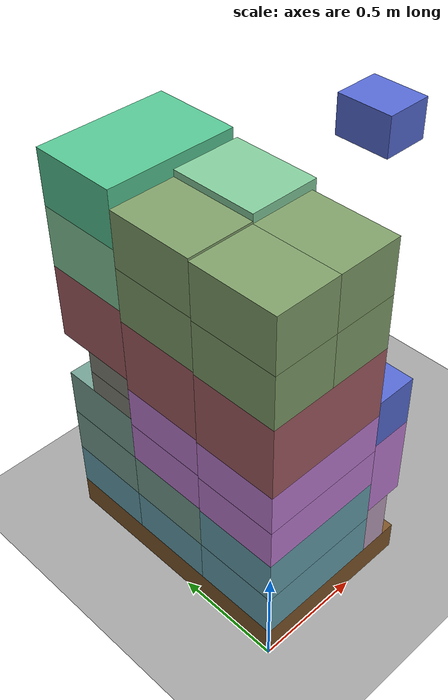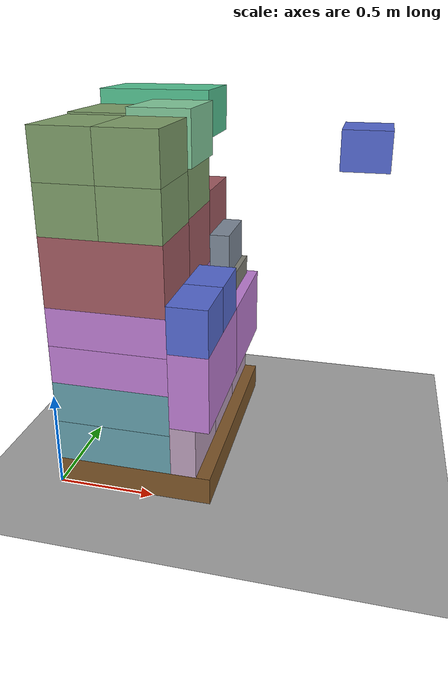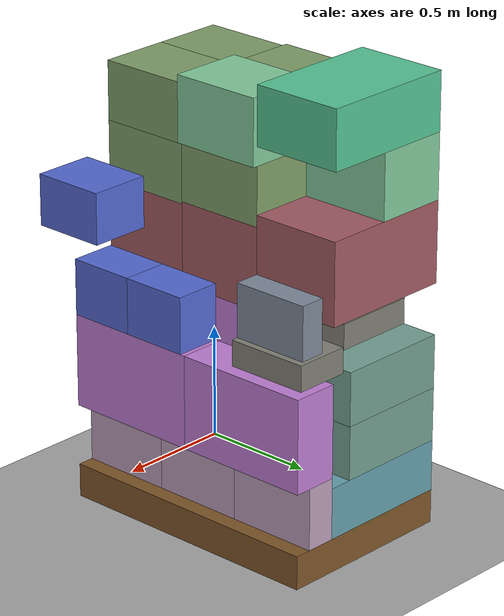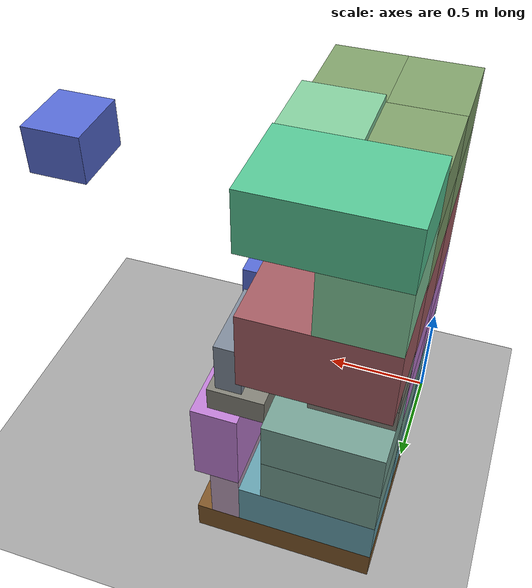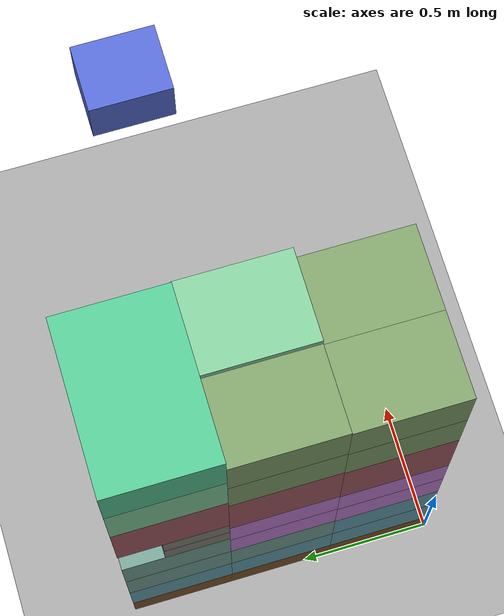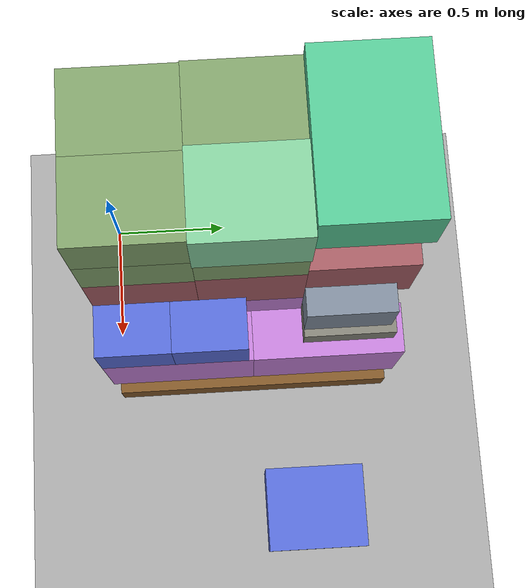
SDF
<sdf version="1.10">
 <world name="pallet_towers">
  <model name="ground_plane">
   <static>true</static>
   <link name="link">
    <collision name="collision">
     <geometry><plane><normal>0 0 1</normal><size>30 30</size></plane></geometry>
     <surface>
      <friction><ode><mu>0.55</mu><mu2>0.55</mu2></ode></friction>
      <bounce><restitution_coefficient>0</restitution_coefficient><threshold>100000</threshold></bounce>
      <contact><ode><kp>1000000</kp><kd>100</kd><max_vel>1</max_vel><min_depth>0.0005</min_depth></ode></contact>
     </surface>
    </collision>
    <visual name="visual">
     <geometry><plane><normal>0 0 1</normal><size>30 30</size></plane></geometry>
     <material><ambient>0.65 0.65 0.65 1</ambient><diffuse>0.65 0.65 0.65 1</diffuse></material>
    </visual>
   </link>
  </model>
  <model name="pallet_01_P01">
   <static>false</static>
   <pose>0.4 0.6 0.072 0 0 0</pose>
   <link name="body">
    <inertial>
     <mass>25</mass>
     <inertia>
      <ixx>3.0432</ixx>
      <ixy>0</ixy>
      <ixz>0</ixz>
      <iyy>1.37653333</iyy>
      <iyz>0</iyz>
      <izz>4.33333333</izz>
     </inertia>
    </inertial>
    <collision name="collision">
     <geometry><box><size>0.8 1.2 0.144</size></box></geometry>
     <surface>
      <friction><ode><mu>0.55</mu><mu2>0.55</mu2></ode></friction>
      <bounce><restitution_coefficient>0</restitution_coefficient><threshold>100000</threshold></bounce>
      <contact><ode><kp>1000000</kp><kd>100</kd><max_vel>1</max_vel><min_depth>0.0005</min_depth></ode></contact>
     </surface>
    </collision>
    <visual name="visual">
     <geometry><box><size>0.8 1.2 0.144</size></box></geometry>
     <material>
      <ambient>0.5 0.34 0.16 1</ambient>
      <diffuse>0.5 0.34 0.16 1</diffuse>
      <specular>0.05 0.05 0.05 1</specular>
     </material>
    </visual>
   </link>
  </model>
  <model name="box_p01_0001_APPLES_001_APPLES">
   <static>false</static>
   <pose>0.3 0.2 0.254 0 0 0</pose>
   <link name="body">
    <inertial>
     <mass>12</mass>
     <inertia><ixx>0.2084</ixx><ixy>0</ixy><ixz>0</ixz><iyy>0.4084</iyy><iyz>0</iyz><izz>0.52</izz></inertia>
    </inertial>
    <collision name="collision">
     <geometry><box><size>0.6 0.4 0.22</size></box></geometry>
     <surface>
      <friction><ode><mu>0.55</mu><mu2>0.55</mu2></ode></friction>
      <bounce><restitution_coefficient>0</restitution_coefficient><threshold>100000</threshold></bounce>
      <contact><ode><kp>1000000</kp><kd>100</kd><max_vel>1</max_vel><min_depth>0.0005</min_depth></ode></contact>
     </surface>
    </collision>
    <visual name="visual">
     <geometry><box><size>0.6 0.4 0.22</size></box></geometry>
     <material>
      <ambient>0.4 0.635294118 0.68627451 1</ambient>
      <diffuse>0.4 0.635294118 0.68627451 1</diffuse>
      <specular>0.05 0.05 0.05 1</specular>
     </material>
    </visual>
   </link>
  </model>
  <model name="box_p01_0002_APPLES_002_APPLES">
   <static>false</static>
   <pose>0.3 0.6 0.254 0 0 0</pose>
   <link name="body">
    <inertial>
     <mass>12</mass>
     <inertia><ixx>0.2084</ixx><ixy>0</ixy><ixz>0</ixz><iyy>0.4084</iyy><iyz>0</iyz><izz>0.52</izz></inertia>
    </inertial>
    <collision name="collision">
     <geometry><box><size>0.6 0.4 0.22</size></box></geometry>
     <surface>
      <friction><ode><mu>0.55</mu><mu2>0.55</mu2></ode></friction>
      <bounce><restitution_coefficient>0</restitution_coefficient><threshold>100000</threshold></bounce>
      <contact><ode><kp>1000000</kp><kd>100</kd><max_vel>1</max_vel><min_depth>0.0005</min_depth></ode></contact>
     </surface>
    </collision>
    <visual name="visual">
     <geometry><box><size>0.6 0.4 0.22</size></box></geometry>
     <material>
      <ambient>0.4 0.635294118 0.68627451 1</ambient>
      <diffuse>0.4 0.635294118 0.68627451 1</diffuse>
      <specular>0.05 0.05 0.05 1</specular>
     </material>
    </visual>
   </link>
  </model>
  <model name="box_p01_0003_APPLES_003_APPLES">
   <static>false</static>
   <pose>0.3 1 0.254 0 0 0</pose>
   <link name="body">
    <inertial>
     <mass>12</mass>
     <inertia><ixx>0.2084</ixx><ixy>0</ixy><ixz>0</ixz><iyy>0.4084</iyy><iyz>0</iyz><izz>0.52</izz></inertia>
    </inertial>
    <collision name="collision">
     <geometry><box><size>0.6 0.4 0.22</size></box></geometry>
     <surface>
      <friction><ode><mu>0.55</mu><mu2>0.55</mu2></ode></friction>
      <bounce><restitution_coefficient>0</restitution_coefficient><threshold>100000</threshold></bounce>
      <contact><ode><kp>1000000</kp><kd>100</kd><max_vel>1</max_vel><min_depth>0.0005</min_depth></ode></contact>
     </surface>
    </collision>
    <visual name="visual">
     <geometry><box><size>0.6 0.4 0.22</size></box></geometry>
     <material>
      <ambient>0.4 0.635294118 0.68627451 1</ambient>
      <diffuse>0.4 0.635294118 0.68627451 1</diffuse>
      <specular>0.05 0.05 0.05 1</specular>
     </material>
    </visual>
   </link>
  </model>
  <model name="box_p01_0004_APPLES_004_APPLES">
   <static>false</static>
   <pose>0.3 0.2 0.474 0 0 0</pose>
   <link name="body">
    <inertial>
     <mass>12</mass>
     <inertia><ixx>0.2084</ixx><ixy>0</ixy><ixz>0</ixz><iyy>0.4084</iyy><iyz>0</iyz><izz>0.52</izz></inertia>
    </inertial>
    <collision name="collision">
     <geometry><box><size>0.6 0.4 0.22</size></box></geometry>
     <surface>
      <friction><ode><mu>0.55</mu><mu2>0.55</mu2></ode></friction>
      <bounce><restitution_coefficient>0</restitution_coefficient><threshold>100000</threshold></bounce>
      <contact><ode><kp>1000000</kp><kd>100</kd><max_vel>1</max_vel><min_depth>0.0005</min_depth></ode></contact>
     </surface>
    </collision>
    <visual name="visual">
     <geometry><box><size>0.6 0.4 0.22</size></box></geometry>
     <material>
      <ambient>0.4 0.635294118 0.68627451 1</ambient>
      <diffuse>0.4 0.635294118 0.68627451 1</diffuse>
      <specular>0.05 0.05 0.05 1</specular>
     </material>
    </visual>
   </link>
  </model>
  <model name="box_p01_0005_BANANA_001_BANANA">
   <static>false</static>
   <pose>0.25 0.6 0.479 0 0 0</pose>
   <link name="body">
    <inertial>
     <mass>18</mass>
     <inertia><ixx>0.31935</ixx><ixy>0</ixy><ixz>0</ixz><iyy>0.45435</iyy><iyz>0</iyz><izz>0.615</izz></inertia>
    </inertial>
    <collision name="collision">
     <geometry><box><size>0.5 0.4 0.23</size></box></geometry>
     <surface>
      <friction><ode><mu>0.55</mu><mu2>0.55</mu2></ode></friction>
      <bounce><restitution_coefficient>0</restitution_coefficient><threshold>100000</threshold></bounce>
      <contact><ode><kp>1000000</kp><kd>100</kd><max_vel>1</max_vel><min_depth>0.0005</min_depth></ode></contact>
     </surface>
    </collision>
    <visual name="visual">
     <geometry><box><size>0.5 0.4 0.23</size></box></geometry>
     <material>
      <ambient>0.462745098 0.635294118 0.584313725 1</ambient>
      <diffuse>0.462745098 0.635294118 0.584313725 1</diffuse>
      <specular>0.05 0.05 0.05 1</specular>
     </material>
    </visual>
   </link>
  </model>
  <model name="box_p01_0006_BANANA_002_BANANA">
   <static>false</static>
   <pose>0.25 1 0.479 0 0 0</pose>
   <link name="body">
    <inertial>
     <mass>18</mass>
     <inertia><ixx>0.31935</ixx><ixy>0</ixy><ixz>0</ixz><iyy>0.45435</iyy><iyz>0</iyz><izz>0.615</izz></inertia>
    </inertial>
    <collision name="collision">
     <geometry><box><size>0.5 0.4 0.23</size></box></geometry>
     <surface>
      <friction><ode><mu>0.55</mu><mu2>0.55</mu2></ode></friction>
      <bounce><restitution_coefficient>0</restitution_coefficient><threshold>100000</threshold></bounce>
      <contact><ode><kp>1000000</kp><kd>100</kd><max_vel>1</max_vel><min_depth>0.0005</min_depth></ode></contact>
     </surface>
    </collision>
    <visual name="visual">
     <geometry><box><size>0.5 0.4 0.23</size></box></geometry>
     <material>
      <ambient>0.462745098 0.635294118 0.584313725 1</ambient>
      <diffuse>0.462745098 0.635294118 0.584313725 1</diffuse>
      <specular>0.05 0.05 0.05 1</specular>
     </material>
    </visual>
   </link>
  </model>
  <model name="box_p01_0007_BANANA_003_BANANA">
   <static>false</static>
   <pose>0.25 1 0.709 0 0 0</pose>
   <link name="body">
    <inertial>
     <mass>18</mass>
     <inertia><ixx>0.31935</ixx><ixy>0</ixy><ixz>0</ixz><iyy>0.45435</iyy><iyz>0</iyz><izz>0.615</izz></inertia>
    </inertial>
    <collision name="collision">
     <geometry><box><size>0.5 0.4 0.23</size></box></geometry>
     <surface>
      <friction><ode><mu>0.55</mu><mu2>0.55</mu2></ode></friction>
      <bounce><restitution_coefficient>0</restitution_coefficient><threshold>100000</threshold></bounce>
      <contact><ode><kp>1000000</kp><kd>100</kd><max_vel>1</max_vel><min_depth>0.0005</min_depth></ode></contact>
     </surface>
    </collision>
    <visual name="visual">
     <geometry><box><size>0.5 0.4 0.23</size></box></geometry>
     <material>
      <ambient>0.462745098 0.635294118 0.584313725 1</ambient>
      <diffuse>0.462745098 0.635294118 0.584313725 1</diffuse>
      <specular>0.05 0.05 0.05 1</specular>
     </material>
    </visual>
   </link>
  </model>
  <model name="box_p01_0008_BEER24_001_BEER24">
   <static>false</static>
   <pose>0.665 0.2 0.2765 0 0 0</pose>
   <link name="body">
    <inertial>
     <mass>9</mass>
     <inertia>
      <ixx>0.17266875</ixx>
      <ixy>0</ixy>
      <ixz>0</ixz>
      <iyy>0.06534375</iyy>
      <iyz>0</iyz>
      <izz>0.132675</izz>
     </inertia>
    </inertial>
    <collision name="collision">
     <geometry><box><size>0.13 0.4 0.265</size></box></geometry>
     <surface>
      <friction><ode><mu>0.55</mu><mu2>0.55</mu2></ode></friction>
      <bounce><restitution_coefficient>0</restitution_coefficient><threshold>100000</threshold></bounce>
      <contact><ode><kp>1000000</kp><kd>100</kd><max_vel>1</max_vel><min_depth>0.0005</min_depth></ode></contact>
     </surface>
    </collision>
    <visual name="visual">
     <geometry><box><size>0.13 0.4 0.265</size></box></geometry>
     <material>
      <ambient>0.741176471 0.62745098 0.737254902 1</ambient>
      <diffuse>0.741176471 0.62745098 0.737254902 1</diffuse>
      <specular>0.05 0.05 0.05 1</specular>
     </material>
    </visual>
   </link>
  </model>
  <model name="box_p01_0009_BEER24_002_BEER24">
   <static>false</static>
   <pose>0.665 0.6 0.2765 0 0 0</pose>
   <link name="body">
    <inertial>
     <mass>9</mass>
     <inertia>
      <ixx>0.17266875</ixx>
      <ixy>0</ixy>
      <ixz>0</ixz>
      <iyy>0.06534375</iyy>
      <iyz>0</iyz>
      <izz>0.132675</izz>
     </inertia>
    </inertial>
    <collision name="collision">
     <geometry><box><size>0.13 0.4 0.265</size></box></geometry>
     <surface>
      <friction><ode><mu>0.55</mu><mu2>0.55</mu2></ode></friction>
      <bounce><restitution_coefficient>0</restitution_coefficient><threshold>100000</threshold></bounce>
      <contact><ode><kp>1000000</kp><kd>100</kd><max_vel>1</max_vel><min_depth>0.0005</min_depth></ode></contact>
     </surface>
    </collision>
    <visual name="visual">
     <geometry><box><size>0.13 0.4 0.265</size></box></geometry>
     <material>
      <ambient>0.741176471 0.62745098 0.737254902 1</ambient>
      <diffuse>0.741176471 0.62745098 0.737254902 1</diffuse>
      <specular>0.05 0.05 0.05 1</specular>
     </material>
    </visual>
   </link>
  </model>
  <model name="box_p01_0010_BEER24_003_BEER24">
   <static>false</static>
   <pose>0.665 1 0.2765 0 0 0</pose>
   <link name="body">
    <inertial>
     <mass>9</mass>
     <inertia>
      <ixx>0.17266875</ixx>
      <ixy>0</ixy>
      <ixz>0</ixz>
      <iyy>0.06534375</iyy>
      <iyz>0</iyz>
      <izz>0.132675</izz>
     </inertia>
    </inertial>
    <collision name="collision">
     <geometry><box><size>0.13 0.4 0.265</size></box></geometry>
     <surface>
      <friction><ode><mu>0.55</mu><mu2>0.55</mu2></ode></friction>
      <bounce><restitution_coefficient>0</restitution_coefficient><threshold>100000</threshold></bounce>
      <contact><ode><kp>1000000</kp><kd>100</kd><max_vel>1</max_vel><min_depth>0.0005</min_depth></ode></contact>
     </surface>
    </collision>
    <visual name="visual">
     <geometry><box><size>0.13 0.4 0.265</size></box></geometry>
     <material>
      <ambient>0.741176471 0.62745098 0.737254902 1</ambient>
      <diffuse>0.741176471 0.62745098 0.737254902 1</diffuse>
      <specular>0.05 0.05 0.05 1</specular>
     </material>
    </visual>
   </link>
  </model>
  <model name="box_p01_0011_BREAD_001_BREAD">
   <static>false</static>
   <pose>0.3 0.2 0.684 0 0 0</pose>
   <link name="body">
    <inertial>
     <mass>4.5</mass>
     <inertia><ixx>0.075</ixx><ixy>0</ixy><ixz>0</ixz><iyy>0.15</iyy><iyz>0</iyz><izz>0.195</izz></inertia>
    </inertial>
    <collision name="collision">
     <geometry><box><size>0.6 0.4 0.2</size></box></geometry>
     <surface>
      <friction><ode><mu>0.55</mu><mu2>0.55</mu2></ode></friction>
      <bounce><restitution_coefficient>0</restitution_coefficient><threshold>100000</threshold></bounce>
      <contact><ode><kp>1000000</kp><kd>100</kd><max_vel>1</max_vel><min_depth>0.0005</min_depth></ode></contact>
     </surface>
    </collision>
    <visual name="visual">
     <geometry><box><size>0.6 0.4 0.2</size></box></geometry>
     <material>
      <ambient>0.756862745 0.498039216 0.839215686 1</ambient>
      <diffuse>0.756862745 0.498039216 0.839215686 1</diffuse>
      <specular>0.05 0.05 0.05 1</specular>
     </material>
    </visual>
   </link>
  </model>
  <model name="box_p01_0012_BREAD_002_BREAD">
   <static>false</static>
   <pose>0.3 0.6 0.694 0 0 0</pose>
   <link name="body">
    <inertial>
     <mass>4.5</mass>
     <inertia><ixx>0.075</ixx><ixy>0</ixy><ixz>0</ixz><iyy>0.15</iyy><iyz>0</iyz><izz>0.195</izz></inertia>
    </inertial>
    <collision name="collision">
     <geometry><box><size>0.6 0.4 0.2</size></box></geometry>
     <surface>
      <friction><ode><mu>0.55</mu><mu2>0.55</mu2></ode></friction>
      <bounce><restitution_coefficient>0</restitution_coefficient><threshold>100000</threshold></bounce>
      <contact><ode><kp>1000000</kp><kd>100</kd><max_vel>1</max_vel><min_depth>0.0005</min_depth></ode></contact>
     </surface>
    </collision>
    <visual name="visual">
     <geometry><box><size>0.6 0.4 0.2</size></box></geometry>
     <material>
      <ambient>0.756862745 0.498039216 0.839215686 1</ambient>
      <diffuse>0.756862745 0.498039216 0.839215686 1</diffuse>
      <specular>0.05 0.05 0.05 1</specular>
     </material>
    </visual>
   </link>
  </model>
  <model name="box_p01_0013_BREAD_003_BREAD">
   <static>false</static>
   <pose>0.3 0.2 0.884 0 0 0</pose>
   <link name="body">
    <inertial>
     <mass>4.5</mass>
     <inertia><ixx>0.075</ixx><ixy>0</ixy><ixz>0</ixz><iyy>0.15</iyy><iyz>0</iyz><izz>0.195</izz></inertia>
    </inertial>
    <collision name="collision">
     <geometry><box><size>0.6 0.4 0.2</size></box></geometry>
     <surface>
      <friction><ode><mu>0.55</mu><mu2>0.55</mu2></ode></friction>
      <bounce><restitution_coefficient>0</restitution_coefficient><threshold>100000</threshold></bounce>
      <contact><ode><kp>1000000</kp><kd>100</kd><max_vel>1</max_vel><min_depth>0.0005</min_depth></ode></contact>
     </surface>
    </collision>
    <visual name="visual">
     <geometry><box><size>0.6 0.4 0.2</size></box></geometry>
     <material>
      <ambient>0.756862745 0.498039216 0.839215686 1</ambient>
      <diffuse>0.756862745 0.498039216 0.839215686 1</diffuse>
      <specular>0.05 0.05 0.05 1</specular>
     </material>
    </visual>
   </link>
  </model>
  <model name="box_p01_0014_BREAD_004_BREAD">
   <static>false</static>
   <pose>0.3 0.6 0.894 0 0 0</pose>
   <link name="body">
    <inertial>
     <mass>4.5</mass>
     <inertia><ixx>0.075</ixx><ixy>0</ixy><ixz>0</ixz><iyy>0.15</iyy><iyz>0</iyz><izz>0.195</izz></inertia>
    </inertial>
    <collision name="collision">
     <geometry><box><size>0.6 0.4 0.2</size></box></geometry>
     <surface>
      <friction><ode><mu>0.55</mu><mu2>0.55</mu2></ode></friction>
      <bounce><restitution_coefficient>0</restitution_coefficient><threshold>100000</threshold></bounce>
      <contact><ode><kp>1000000</kp><kd>100</kd><max_vel>1</max_vel><min_depth>0.0005</min_depth></ode></contact>
     </surface>
    </collision>
    <visual name="visual">
     <geometry><box><size>0.6 0.4 0.2</size></box></geometry>
     <material>
      <ambient>0.756862745 0.498039216 0.839215686 1</ambient>
      <diffuse>0.756862745 0.498039216 0.839215686 1</diffuse>
      <specular>0.05 0.05 0.05 1</specular>
     </material>
    </visual>
   </link>
  </model>
  <model name="box_p01_0015_BREAD_005_BREAD">
   <static>false</static>
   <pose>0.7 0.3 0.609 0 0 0</pose>
   <link name="body">
    <inertial>
     <mass>4.5</mass>
     <inertia><ixx>0.195</ixx><ixy>0</ixy><ixz>0</ixz><iyy>0.075</iyy><iyz>0</iyz><izz>0.15</izz></inertia>
    </inertial>
    <collision name="collision">
     <geometry><box><size>0.2 0.6 0.4</size></box></geometry>
     <surface>
      <friction><ode><mu>0.55</mu><mu2>0.55</mu2></ode></friction>
      <bounce><restitution_coefficient>0</restitution_coefficient><threshold>100000</threshold></bounce>
      <contact><ode><kp>1000000</kp><kd>100</kd><max_vel>1</max_vel><min_depth>0.0005</min_depth></ode></contact>
     </surface>
    </collision>
    <visual name="visual">
     <geometry><box><size>0.2 0.6 0.4</size></box></geometry>
     <material>
      <ambient>0.756862745 0.498039216 0.839215686 1</ambient>
      <diffuse>0.756862745 0.498039216 0.839215686 1</diffuse>
      <specular>0.05 0.05 0.05 1</specular>
     </material>
    </visual>
   </link>
  </model>
  <model name="box_p01_0016_BREAD_006_BREAD">
   <static>false</static>
   <pose>0.7 0.9 0.609 0 0 0</pose>
   <link name="body">
    <inertial>
     <mass>4.5</mass>
     <inertia><ixx>0.195</ixx><ixy>0</ixy><ixz>0</ixz><iyy>0.075</iyy><iyz>0</iyz><izz>0.15</izz></inertia>
    </inertial>
    <collision name="collision">
     <geometry><box><size>0.2 0.6 0.4</size></box></geometry>
     <surface>
      <friction><ode><mu>0.55</mu><mu2>0.55</mu2></ode></friction>
      <bounce><restitution_coefficient>0</restitution_coefficient><threshold>100000</threshold></bounce>
      <contact><ode><kp>1000000</kp><kd>100</kd><max_vel>1</max_vel><min_depth>0.0005</min_depth></ode></contact>
     </surface>
    </collision>
    <visual name="visual">
     <geometry><box><size>0.2 0.6 0.4</size></box></geometry>
     <material>
      <ambient>0.756862745 0.498039216 0.839215686 1</ambient>
      <diffuse>0.756862745 0.498039216 0.839215686 1</diffuse>
      <specular>0.05 0.05 0.05 1</specular>
     </material>
    </visual>
   </link>
  </model>
  <model name="box_p01_0017_BUTTER_001_BUTTER">
   <static>false</static>
   <pose>0.18 0.92 0.879 0 0 0</pose>
   <link name="body">
    <inertial>
     <mass>10</mass>
     <inertia>
      <ixx>0.0580833333</ixx>
      <ixy>0</ixy>
      <ixz>0</ixz>
      <iyy>0.118083333</iyy>
      <iyz>0</iyz>
      <izz>0.156</izz>
     </inertia>
    </inertial>
    <collision name="collision">
     <geometry><box><size>0.36 0.24 0.11</size></box></geometry>
     <surface>
      <friction><ode><mu>0.55</mu><mu2>0.55</mu2></ode></friction>
      <bounce><restitution_coefficient>0</restitution_coefficient><threshold>100000</threshold></bounce>
      <contact><ode><kp>1000000</kp><kd>100</kd><max_vel>1</max_vel><min_depth>0.0005</min_depth></ode></contact>
     </surface>
    </collision>
    <visual name="visual">
     <geometry><box><size>0.36 0.24 0.11</size></box></geometry>
     <material>
      <ambient>0.51372549 0.509803922 0.466666667 1</ambient>
      <diffuse>0.51372549 0.509803922 0.466666667 1</diffuse>
      <specular>0.05 0.05 0.05 1</specular>
     </material>
    </visual>
   </link>
  </model>
  <model name="box_p01_0018_BUTTER_002_BUTTER">
   <static>false</static>
   <pose>0.18 0.92 0.989 0 0 0</pose>
   <link name="body">
    <inertial>
     <mass>10</mass>
     <inertia>
      <ixx>0.0580833333</ixx>
      <ixy>0</ixy>
      <ixz>0</ixz>
      <iyy>0.118083333</iyy>
      <iyz>0</iyz>
      <izz>0.156</izz>
     </inertia>
    </inertial>
    <collision name="collision">
     <geometry><box><size>0.36 0.24 0.11</size></box></geometry>
     <surface>
      <friction><ode><mu>0.55</mu><mu2>0.55</mu2></ode></friction>
      <bounce><restitution_coefficient>0</restitution_coefficient><threshold>100000</threshold></bounce>
      <contact><ode><kp>1000000</kp><kd>100</kd><max_vel>1</max_vel><min_depth>0.0005</min_depth></ode></contact>
     </surface>
    </collision>
    <visual name="visual">
     <geometry><box><size>0.36 0.24 0.11</size></box></geometry>
     <material>
      <ambient>0.51372549 0.509803922 0.466666667 1</ambient>
      <diffuse>0.51372549 0.509803922 0.466666667 1</diffuse>
      <specular>0.05 0.05 0.05 1</specular>
     </material>
    </visual>
   </link>
  </model>
  <model name="box_p01_0019_BUTTER_003_BUTTER">
   <static>false</static>
   <pose>0.62 0.98 0.864 0 0 0</pose>
   <link name="body">
    <inertial>
     <mass>10</mass>
     <inertia>
      <ixx>0.118083333</ixx>
      <ixy>0</ixy>
      <ixz>0</ixz>
      <iyy>0.0580833333</iyy>
      <iyz>0</iyz>
      <izz>0.156</izz>
     </inertia>
    </inertial>
    <collision name="collision">
     <geometry><box><size>0.24 0.36 0.11</size></box></geometry>
     <surface>
      <friction><ode><mu>0.55</mu><mu2>0.55</mu2></ode></friction>
      <bounce><restitution_coefficient>0</restitution_coefficient><threshold>100000</threshold></bounce>
      <contact><ode><kp>1000000</kp><kd>100</kd><max_vel>1</max_vel><min_depth>0.0005</min_depth></ode></contact>
     </surface>
    </collision>
    <visual name="visual">
     <geometry><box><size>0.24 0.36 0.11</size></box></geometry>
     <material>
      <ambient>0.51372549 0.509803922 0.466666667 1</ambient>
      <diffuse>0.51372549 0.509803922 0.466666667 1</diffuse>
      <specular>0.05 0.05 0.05 1</specular>
     </material>
    </visual>
   </link>
  </model>
  <model name="box_p01_0020_CHIPS_001_CHIPS">
   <static>false</static>
   <pose>0.3 0.2 1.159 0 0 0</pose>
   <link name="body">
    <inertial>
     <mass>3.5</mass>
     <inertia>
      <ixx>0.0823958333</ixx>
      <ixy>0</ixy>
      <ixz>0</ixz>
      <iyy>0.140729167</iyy>
      <iyz>0</iyz>
      <izz>0.151666667</izz>
     </inertia>
    </inertial>
    <collision name="collision">
     <geometry><box><size>0.6 0.4 0.35</size></box></geometry>
     <surface>
      <friction><ode><mu>0.55</mu><mu2>0.55</mu2></ode></friction>
      <bounce><restitution_coefficient>0</restitution_coefficient><threshold>100000</threshold></bounce>
      <contact><ode><kp>1000000</kp><kd>100</kd><max_vel>1</max_vel><min_depth>0.0005</min_depth></ode></contact>
     </surface>
    </collision>
    <visual name="visual">
     <geometry><box><size>0.6 0.4 0.35</size></box></geometry>
     <material>
      <ambient>0.643137255 0.360784314 0.388235294 1</ambient>
      <diffuse>0.643137255 0.360784314 0.388235294 1</diffuse>
      <specular>0.05 0.05 0.05 1</specular>
     </material>
    </visual>
   </link>
  </model>
  <model name="box_p01_0021_CHIPS_002_CHIPS">
   <static>false</static>
   <pose>0.3 0.6 1.169 0 0 0</pose>
   <link name="body">
    <inertial>
     <mass>3.5</mass>
     <inertia>
      <ixx>0.0823958333</ixx>
      <ixy>0</ixy>
      <ixz>0</ixz>
      <iyy>0.140729167</iyy>
      <iyz>0</iyz>
      <izz>0.151666667</izz>
     </inertia>
    </inertial>
    <collision name="collision">
     <geometry><box><size>0.6 0.4 0.35</size></box></geometry>
     <surface>
      <friction><ode><mu>0.55</mu><mu2>0.55</mu2></ode></friction>
      <bounce><restitution_coefficient>0</restitution_coefficient><threshold>100000</threshold></bounce>
      <contact><ode><kp>1000000</kp><kd>100</kd><max_vel>1</max_vel><min_depth>0.0005</min_depth></ode></contact>
     </surface>
    </collision>
    <visual name="visual">
     <geometry><box><size>0.6 0.4 0.35</size></box></geometry>
     <material>
      <ambient>0.643137255 0.360784314 0.388235294 1</ambient>
      <diffuse>0.643137255 0.360784314 0.388235294 1</diffuse>
      <specular>0.05 0.05 0.05 1</specular>
     </material>
    </visual>
   </link>
  </model>
  <model name="box_p01_0022_CHIPS_003_CHIPS">
   <static>false</static>
   <pose>0.3 1 1.219 0 0 0</pose>
   <link name="body">
    <inertial>
     <mass>3.5</mass>
     <inertia>
      <ixx>0.0823958333</ixx>
      <ixy>0</ixy>
      <ixz>0</ixz>
      <iyy>0.140729167</iyy>
      <iyz>0</iyz>
      <izz>0.151666667</izz>
     </inertia>
    </inertial>
    <collision name="collision">
     <geometry><box><size>0.6 0.4 0.35</size></box></geometry>
     <surface>
      <friction><ode><mu>0.55</mu><mu2>0.55</mu2></ode></friction>
      <bounce><restitution_coefficient>0</restitution_coefficient><threshold>100000</threshold></bounce>
      <contact><ode><kp>1000000</kp><kd>100</kd><max_vel>1</max_vel><min_depth>0.0005</min_depth></ode></contact>
     </surface>
    </collision>
    <visual name="visual">
     <geometry><box><size>0.6 0.4 0.35</size></box></geometry>
     <material>
      <ambient>0.643137255 0.360784314 0.388235294 1</ambient>
      <diffuse>0.643137255 0.360784314 0.388235294 1</diffuse>
      <specular>0.05 0.05 0.05 1</specular>
     </material>
    </visual>
   </link>
  </model>
  <model name="box_p01_0023_CHOCO_001_CHOCO">
   <static>false</static>
   <pose>0.7 0.145 0.929 0 0 0</pose>
   <link name="body">
    <inertial>
     <mass>6</mass>
     <inertia><ixx>0.07085</ixx><ixy>0</ixy><ixz>0</ixz><iyy>0.0488</iyy><iyz>0</iyz><izz>0.06205</izz></inertia>
    </inertial>
    <collision name="collision">
     <geometry><box><size>0.2 0.29 0.24</size></box></geometry>
     <surface>
      <friction><ode><mu>0.55</mu><mu2>0.55</mu2></ode></friction>
      <bounce><restitution_coefficient>0</restitution_coefficient><threshold>100000</threshold></bounce>
      <contact><ode><kp>1000000</kp><kd>100</kd><max_vel>1</max_vel><min_depth>0.0005</min_depth></ode></contact>
     </surface>
    </collision>
    <visual name="visual">
     <geometry><box><size>0.2 0.29 0.24</size></box></geometry>
     <material>
      <ambient>0.337254902 0.419607843 0.835294118 1</ambient>
      <diffuse>0.337254902 0.419607843 0.835294118 1</diffuse>
      <specular>0.05 0.05 0.05 1</specular>
     </material>
    </visual>
   </link>
  </model>
  <model name="box_p01_0024_CHOCO_002_CHOCO">
   <static>false</static>
   <pose>0.7 0.435 0.929 0 0 0</pose>
   <link name="body">
    <inertial>
     <mass>6</mass>
     <inertia><ixx>0.07085</ixx><ixy>0</ixy><ixz>0</ixz><iyy>0.0488</iyy><iyz>0</iyz><izz>0.06205</izz></inertia>
    </inertial>
    <collision name="collision">
     <geometry><box><size>0.2 0.29 0.24</size></box></geometry>
     <surface>
      <friction><ode><mu>0.55</mu><mu2>0.55</mu2></ode></friction>
      <bounce><restitution_coefficient>0</restitution_coefficient><threshold>100000</threshold></bounce>
      <contact><ode><kp>1000000</kp><kd>100</kd><max_vel>1</max_vel><min_depth>0.0005</min_depth></ode></contact>
     </surface>
    </collision>
    <visual name="visual">
     <geometry><box><size>0.2 0.29 0.24</size></box></geometry>
     <material>
      <ambient>0.337254902 0.419607843 0.835294118 1</ambient>
      <diffuse>0.337254902 0.419607843 0.835294118 1</diffuse>
      <specular>0.05 0.05 0.05 1</specular>
     </material>
    </visual>
   </link>
  </model>
  <model name="box_p01_0025_COFFEE_001_COFFEE">
   <static>false</static>
   <pose>0.15 0.2 1.459 0 0 0</pose>
   <link name="body">
    <inertial>
     <mass>13</mass>
     <inertia>
      <ixx>0.241041667</ixx>
      <ixy>0</ixy>
      <ixz>0</ixz>
      <iyy>0.165208333</iyy>
      <iyz>0</iyz>
      <izz>0.270833333</izz>
     </inertia>
    </inertial>
    <collision name="collision">
     <geometry><box><size>0.3 0.4 0.25</size></box></geometry>
     <surface>
      <friction><ode><mu>0.55</mu><mu2>0.55</mu2></ode></friction>
      <bounce><restitution_coefficient>0</restitution_coefficient><threshold>100000</threshold></bounce>
      <contact><ode><kp>1000000</kp><kd>100</kd><max_vel>1</max_vel><min_depth>0.0005</min_depth></ode></contact>
     </surface>
    </collision>
    <visual name="visual">
     <geometry><box><size>0.3 0.4 0.25</size></box></geometry>
     <material>
      <ambient>0.505882353 0.631372549 0.419607843 1</ambient>
      <diffuse>0.505882353 0.631372549 0.419607843 1</diffuse>
      <specular>0.05 0.05 0.05 1</specular>
     </material>
    </visual>
   </link>
  </model>
  <model name="box_p01_0026_COFFEE_002_COFFEE">
   <static>false</static>
   <pose>0.45 0.2 1.459 0 0 0</pose>
   <link name="body">
    <inertial>
     <mass>13</mass>
     <inertia>
      <ixx>0.241041667</ixx>
      <ixy>0</ixy>
      <ixz>0</ixz>
      <iyy>0.165208333</iyy>
      <iyz>0</iyz>
      <izz>0.270833333</izz>
     </inertia>
    </inertial>
    <collision name="collision">
     <geometry><box><size>0.3 0.4 0.25</size></box></geometry>
     <surface>
      <friction><ode><mu>0.55</mu><mu2>0.55</mu2></ode></friction>
      <bounce><restitution_coefficient>0</restitution_coefficient><threshold>100000</threshold></bounce>
      <contact><ode><kp>1000000</kp><kd>100</kd><max_vel>1</max_vel><min_depth>0.0005</min_depth></ode></contact>
     </surface>
    </collision>
    <visual name="visual">
     <geometry><box><size>0.3 0.4 0.25</size></box></geometry>
     <material>
      <ambient>0.505882353 0.631372549 0.419607843 1</ambient>
      <diffuse>0.505882353 0.631372549 0.419607843 1</diffuse>
      <specular>0.05 0.05 0.05 1</specular>
     </material>
    </visual>
   </link>
  </model>
  <model name="box_p01_0027_COFFEE_003_COFFEE">
   <static>false</static>
   <pose>0.15 0.6 1.469 0 0 0</pose>
   <link name="body">
    <inertial>
     <mass>13</mass>
     <inertia>
      <ixx>0.241041667</ixx>
      <ixy>0</ixy>
      <ixz>0</ixz>
      <iyy>0.165208333</iyy>
      <iyz>0</iyz>
      <izz>0.270833333</izz>
     </inertia>
    </inertial>
    <collision name="collision">
     <geometry><box><size>0.3 0.4 0.25</size></box></geometry>
     <surface>
      <friction><ode><mu>0.55</mu><mu2>0.55</mu2></ode></friction>
      <bounce><restitution_coefficient>0</restitution_coefficient><threshold>100000</threshold></bounce>
      <contact><ode><kp>1000000</kp><kd>100</kd><max_vel>1</max_vel><min_depth>0.0005</min_depth></ode></contact>
     </surface>
    </collision>
    <visual name="visual">
     <geometry><box><size>0.3 0.4 0.25</size></box></geometry>
     <material>
      <ambient>0.505882353 0.631372549 0.419607843 1</ambient>
      <diffuse>0.505882353 0.631372549 0.419607843 1</diffuse>
      <specular>0.05 0.05 0.05 1</specular>
     </material>
    </visual>
   </link>
  </model>
  <model name="box_p01_0028_COFFEE_004_COFFEE">
   <static>false</static>
   <pose>0.45 0.6 1.469 0 0 0</pose>
   <link name="body">
    <inertial>
     <mass>13</mass>
     <inertia>
      <ixx>0.241041667</ixx>
      <ixy>0</ixy>
      <ixz>0</ixz>
      <iyy>0.165208333</iyy>
      <iyz>0</iyz>
      <izz>0.270833333</izz>
     </inertia>
    </inertial>
    <collision name="collision">
     <geometry><box><size>0.3 0.4 0.25</size></box></geometry>
     <surface>
      <friction><ode><mu>0.55</mu><mu2>0.55</mu2></ode></friction>
      <bounce><restitution_coefficient>0</restitution_coefficient><threshold>100000</threshold></bounce>
      <contact><ode><kp>1000000</kp><kd>100</kd><max_vel>1</max_vel><min_depth>0.0005</min_depth></ode></contact>
     </surface>
    </collision>
    <visual name="visual">
     <geometry><box><size>0.3 0.4 0.25</size></box></geometry>
     <material>
      <ambient>0.505882353 0.631372549 0.419607843 1</ambient>
      <diffuse>0.505882353 0.631372549 0.419607843 1</diffuse>
      <specular>0.05 0.05 0.05 1</specular>
     </material>
    </visual>
   </link>
  </model>
  <model name="box_p01_0029_COFFEE_005_COFFEE">
   <static>false</static>
   <pose>0.15 0.2 1.709 0 0 0</pose>
   <link name="body">
    <inertial>
     <mass>13</mass>
     <inertia>
      <ixx>0.241041667</ixx>
      <ixy>0</ixy>
      <ixz>0</ixz>
      <iyy>0.165208333</iyy>
      <iyz>0</iyz>
      <izz>0.270833333</izz>
     </inertia>
    </inertial>
    <collision name="collision">
     <geometry><box><size>0.3 0.4 0.25</size></box></geometry>
     <surface>
      <friction><ode><mu>0.55</mu><mu2>0.55</mu2></ode></friction>
      <bounce><restitution_coefficient>0</restitution_coefficient><threshold>100000</threshold></bounce>
      <contact><ode><kp>1000000</kp><kd>100</kd><max_vel>1</max_vel><min_depth>0.0005</min_depth></ode></contact>
     </surface>
    </collision>
    <visual name="visual">
     <geometry><box><size>0.3 0.4 0.25</size></box></geometry>
     <material>
      <ambient>0.505882353 0.631372549 0.419607843 1</ambient>
      <diffuse>0.505882353 0.631372549 0.419607843 1</diffuse>
      <specular>0.05 0.05 0.05 1</specular>
     </material>
    </visual>
   </link>
  </model>
  <model name="box_p01_0030_COFFEE_006_COFFEE">
   <static>false</static>
   <pose>0.45 0.2 1.709 0 0 0</pose>
   <link name="body">
    <inertial>
     <mass>13</mass>
     <inertia>
      <ixx>0.241041667</ixx>
      <ixy>0</ixy>
      <ixz>0</ixz>
      <iyy>0.165208333</iyy>
      <iyz>0</iyz>
      <izz>0.270833333</izz>
     </inertia>
    </inertial>
    <collision name="collision">
     <geometry><box><size>0.3 0.4 0.25</size></box></geometry>
     <surface>
      <friction><ode><mu>0.55</mu><mu2>0.55</mu2></ode></friction>
      <bounce><restitution_coefficient>0</restitution_coefficient><threshold>100000</threshold></bounce>
      <contact><ode><kp>1000000</kp><kd>100</kd><max_vel>1</max_vel><min_depth>0.0005</min_depth></ode></contact>
     </surface>
    </collision>
    <visual name="visual">
     <geometry><box><size>0.3 0.4 0.25</size></box></geometry>
     <material>
      <ambient>0.505882353 0.631372549 0.419607843 1</ambient>
      <diffuse>0.505882353 0.631372549 0.419607843 1</diffuse>
      <specular>0.05 0.05 0.05 1</specular>
     </material>
    </visual>
   </link>
  </model>
  <model name="box_p01_0031_COFFEE_007_COFFEE">
   <static>false</static>
   <pose>0.15 0.6 1.719 0 0 0</pose>
   <link name="body">
    <inertial>
     <mass>13</mass>
     <inertia>
      <ixx>0.241041667</ixx>
      <ixy>0</ixy>
      <ixz>0</ixz>
      <iyy>0.165208333</iyy>
      <iyz>0</iyz>
      <izz>0.270833333</izz>
     </inertia>
    </inertial>
    <collision name="collision">
     <geometry><box><size>0.3 0.4 0.25</size></box></geometry>
     <surface>
      <friction><ode><mu>0.55</mu><mu2>0.55</mu2></ode></friction>
      <bounce><restitution_coefficient>0</restitution_coefficient><threshold>100000</threshold></bounce>
      <contact><ode><kp>1000000</kp><kd>100</kd><max_vel>1</max_vel><min_depth>0.0005</min_depth></ode></contact>
     </surface>
    </collision>
    <visual name="visual">
     <geometry><box><size>0.3 0.4 0.25</size></box></geometry>
     <material>
      <ambient>0.505882353 0.631372549 0.419607843 1</ambient>
      <diffuse>0.505882353 0.631372549 0.419607843 1</diffuse>
      <specular>0.05 0.05 0.05 1</specular>
     </material>
    </visual>
   </link>
  </model>
  <model name="box_p01_0032_DETERG_001_DETERG">
   <static>false</static>
   <pose>0.16 1 1.534 0 0 0</pose>
   <link name="body">
    <inertial>
     <mass>7</mass>
     <inertia>
      <ixx>0.139066667</ixx>
      <ixy>0</ixy>
      <ixz>0</ixz>
      <iyy>0.105466667</iyy>
      <iyz>0</iyz>
      <izz>0.153066667</izz>
     </inertia>
    </inertial>
    <collision name="collision">
     <geometry><box><size>0.32 0.4 0.28</size></box></geometry>
     <surface>
      <friction><ode><mu>0.55</mu><mu2>0.55</mu2></ode></friction>
      <bounce><restitution_coefficient>0</restitution_coefficient><threshold>100000</threshold></bounce>
      <contact><ode><kp>1000000</kp><kd>100</kd><max_vel>1</max_vel><min_depth>0.0005</min_depth></ode></contact>
     </surface>
    </collision>
    <visual name="visual">
     <geometry><box><size>0.32 0.4 0.28</size></box></geometry>
     <material>
      <ambient>0.517647059 0.803921569 0.615686275 1</ambient>
      <diffuse>0.517647059 0.803921569 0.615686275 1</diffuse>
      <specular>0.05 0.05 0.05 1</specular>
     </material>
    </visual>
   </link>
  </model>
  <model name="box_p01_0033_DETERG_002_DETERG">
   <static>false</static>
   <pose>0.46 0.6 1.734 0 0 0</pose>
   <link name="body">
    <inertial>
     <mass>7</mass>
     <inertia>
      <ixx>0.139066667</ixx>
      <ixy>0</ixy>
      <ixz>0</ixz>
      <iyy>0.105466667</iyy>
      <iyz>0</iyz>
      <izz>0.153066667</izz>
     </inertia>
    </inertial>
    <collision name="collision">
     <geometry><box><size>0.32 0.4 0.28</size></box></geometry>
     <surface>
      <friction><ode><mu>0.55</mu><mu2>0.55</mu2></ode></friction>
      <bounce><restitution_coefficient>0</restitution_coefficient><threshold>100000</threshold></bounce>
      <contact><ode><kp>1000000</kp><kd>100</kd><max_vel>1</max_vel><min_depth>0.0005</min_depth></ode></contact>
     </surface>
    </collision>
    <visual name="visual">
     <geometry><box><size>0.32 0.4 0.28</size></box></geometry>
     <material>
      <ambient>0.517647059 0.803921569 0.615686275 1</ambient>
      <diffuse>0.517647059 0.803921569 0.615686275 1</diffuse>
      <specular>0.05 0.05 0.05 1</specular>
     </material>
    </visual>
   </link>
  </model>
  <model name="box_p01_0034_DIAPER_001_DIAPER">
   <static>false</static>
   <pose>0.3 1 1.799 0 0 0</pose>
   <link name="body">
    <inertial>
     <mass>7</mass>
     <inertia>
      <ixx>0.129791667</ixx>
      <ixy>0</ixy>
      <ixz>0</ixz>
      <iyy>0.246458333</iyy>
      <iyz>0</iyz>
      <izz>0.303333333</izz>
     </inertia>
    </inertial>
    <collision name="collision">
     <geometry><box><size>0.6 0.4 0.25</size></box></geometry>
     <surface>
      <friction><ode><mu>0.55</mu><mu2>0.55</mu2></ode></friction>
      <bounce><restitution_coefficient>0</restitution_coefficient><threshold>100000</threshold></bounce>
      <contact><ode><kp>1000000</kp><kd>100</kd><max_vel>1</max_vel><min_depth>0.0005</min_depth></ode></contact>
     </surface>
    </collision>
    <visual name="visual">
     <geometry><box><size>0.6 0.4 0.25</size></box></geometry>
     <material>
      <ambient>0.337254902 0.780392157 0.584313725 1</ambient>
      <diffuse>0.337254902 0.780392157 0.584313725 1</diffuse>
      <specular>0.05 0.05 0.05 1</specular>
     </material>
    </visual>
   </link>
  </model>
  <model name="box_p01_0035_DOGFOOD_001_DOGFOOD">
   <static>false</static>
   <pose>0.655 0.97 1.034 0 0 0</pose>
   <link name="body">
    <inertial>
     <mass>8</mass>
     <inertia>
      <ixx>0.112333333</ixx>
      <ixy>0</ixy>
      <ixz>0</ixz>
      <iyy>0.0433333333</iyy>
      <iyz>0</iyz>
      <izz>0.0851333333</izz>
     </inertia>
    </inertial>
    <collision name="collision">
     <geometry><box><size>0.11 0.34 0.23</size></box></geometry>
     <surface>
      <friction><ode><mu>0.55</mu><mu2>0.55</mu2></ode></friction>
      <bounce><restitution_coefficient>0</restitution_coefficient><threshold>100000</threshold></bounce>
      <contact><ode><kp>1000000</kp><kd>100</kd><max_vel>1</max_vel><min_depth>0.0005</min_depth></ode></contact>
     </surface>
    </collision>
    <visual name="visual">
     <geometry><box><size>0.11 0.34 0.23</size></box></geometry>
     <material>
      <ambient>0.498039216 0.545098039 0.607843137 1</ambient>
      <diffuse>0.498039216 0.545098039 0.607843137 1</diffuse>
      <specular>0.05 0.05 0.05 1</specular>
     </material>
    </visual>
   </link>
  </model>
  <model name="box_p02_0044_CHOCO_004_CHOCO">
   <static>false</static>
   <pose>1.42 0.745 1.674 0 0 0</pose>
   <link name="body">
    <inertial>
     <mass>6</mass>
     <inertia><ixx>0.06205</ixx><ixy>0</ixy><ixz>0</ixz><iyy>0.0488</iyy><iyz>0</iyz><izz>0.07085</izz></inertia>
    </inertial>
    <collision name="collision">
     <geometry><box><size>0.24 0.29 0.2</size></box></geometry>
     <surface>
      <friction><ode><mu>0.55</mu><mu2>0.55</mu2></ode></friction>
      <bounce><restitution_coefficient>0</restitution_coefficient><threshold>100000</threshold></bounce>
      <contact><ode><kp>1000000</kp><kd>100</kd><max_vel>1</max_vel><min_depth>0.0005</min_depth></ode></contact>
     </surface>
    </collision>
    <visual name="visual">
     <geometry><box><size>0.24 0.29 0.2</size></box></geometry>
     <material>
      <ambient>0.337254902 0.419607843 0.835294118 1</ambient>
      <diffuse>0.337254902 0.419607843 0.835294118 1</diffuse>
      <specular>0.05 0.05 0.05 1</specular>
     </material>
    </visual>
   </link>
  </model>
 </world>
</sdf>
